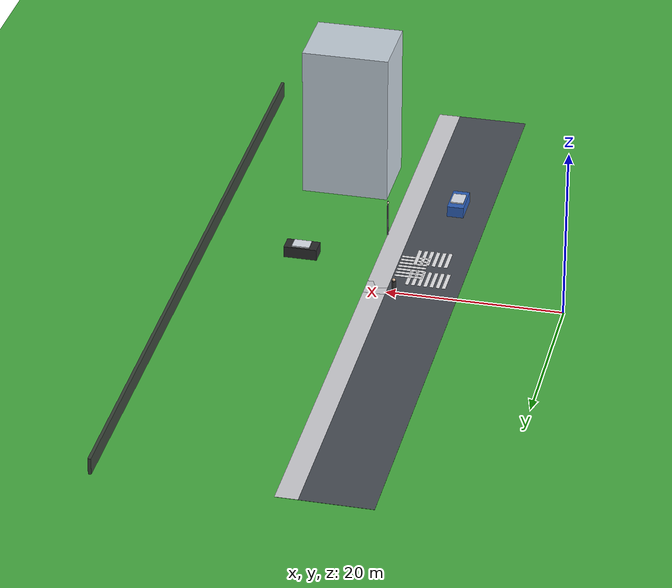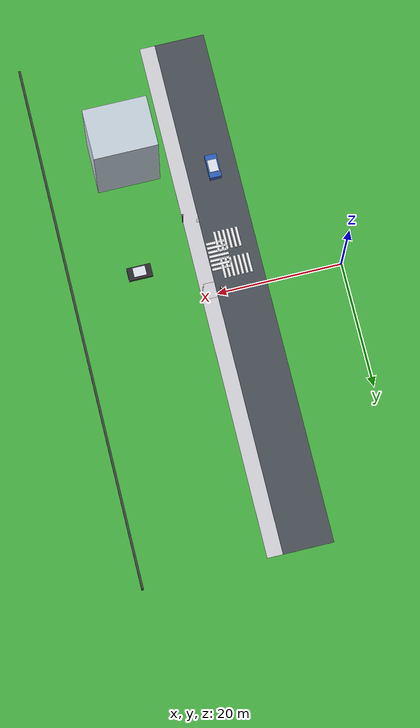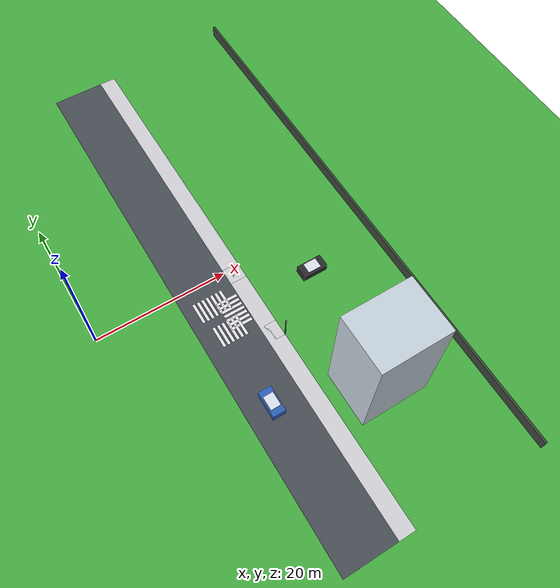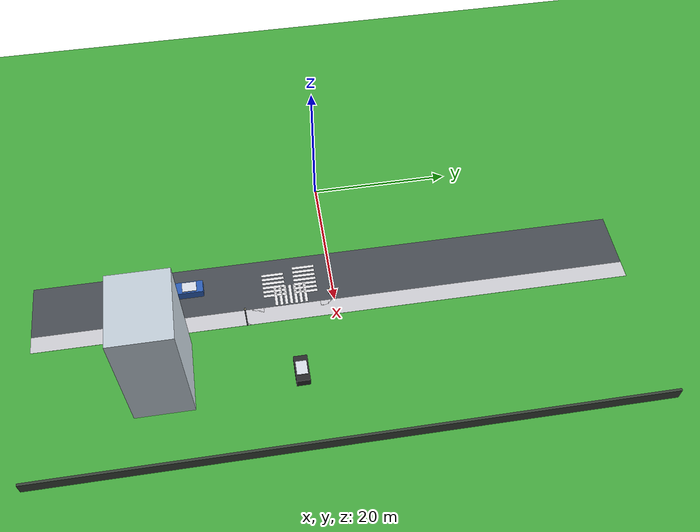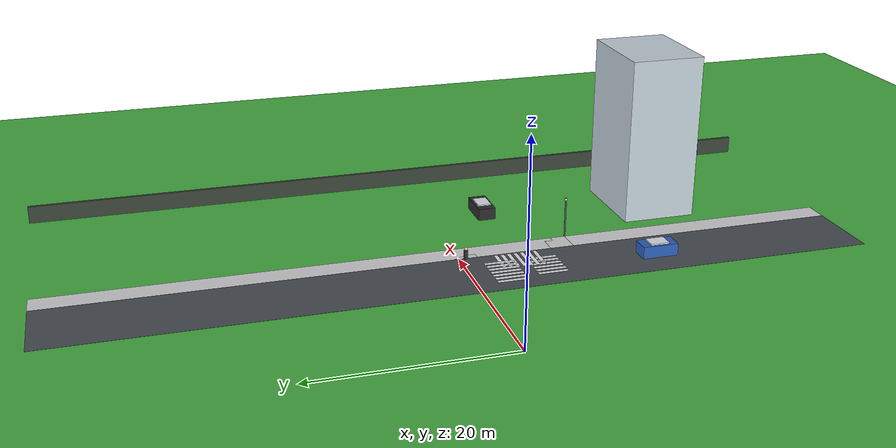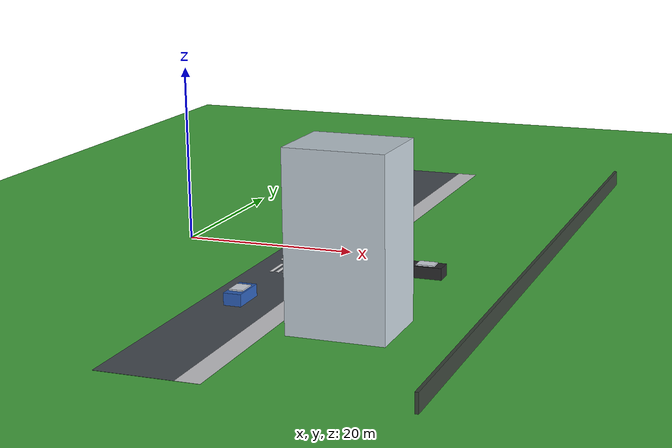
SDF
<sdf version="1.9">
 <world name="city_second">
  <model name="ground_plane">
   <static>true</static>
   <link name="link">
    <collision name="collision">
     <geometry><plane><normal>0 0 1</normal><size>300 300</size></plane></geometry>
    </collision>
    <visual name="visual">
     <geometry><plane><normal>0 0 1</normal><size>300 300</size></plane></geometry>
     <material>
      <ambient>0.28 0.69 0.26 1</ambient>
      <diffuse>0.28 0.69 0.26 1</diffuse>
      <specular>0.03 0.03 0.03 1</specular>
     </material>
    </visual>
   </link>
  </model>
  <model name="road_v_2">
   <static>true</static>
   <pose>16.0 0 0.01 0 0 0.0</pose>
   <link name="link">
    <collision name="collision"><geometry><box><size>8.0 84 0.02</size></box></geometry></collision>
    <visual name="visual">
     <geometry><box><size>8.0 84 0.02</size></box></geometry>
     <material>
      <ambient>0.29 0.31 0.34 1</ambient>
      <diffuse>0.29 0.31 0.34 1</diffuse>
      <specular>0.03 0.03 0.03 1</specular>
     </material>
    </visual>
   </link>
  </model>
  <model name="sidewalk_v_2_east">
   <static>true</static>
   <pose>21.25 0 0.015 0 0 0.0</pose>
   <link name="link">
    <collision name="collision"><geometry><box><size>2.5 84 0.02</size></box></geometry></collision>
    <visual name="visual">
     <geometry><box><size>2.5 84 0.02</size></box></geometry>
     <material>
      <ambient>0.83 0.83 0.85 1</ambient>
      <diffuse>0.83 0.83 0.85 1</diffuse>
      <specular>0.03 0.03 0.03 1</specular>
     </material>
    </visual>
   </link>
  </model>
  <model name="corner_sidewalk_2_1_3">
   <static>true</static>
   <pose>21.25 -11.25 0.015 0 0 0.0</pose>
   <link name="link">
    <collision name="collision"><geometry><box><size>2.5 2.5 0.02</size></box></geometry></collision>
    <visual name="visual">
     <geometry><box><size>2.5 2.5 0.02</size></box></geometry>
     <material>
      <ambient>0.83 0.83 0.85 1</ambient>
      <diffuse>0.83 0.83 0.85 1</diffuse>
      <specular>0.03 0.03 0.03 1</specular>
     </material>
    </visual>
   </link>
  </model>
  <model name="corner_sidewalk_2_1_4">
   <static>true</static>
   <pose>21.25 -0.75 0.015 0 0 0.0</pose>
   <link name="link">
    <collision name="collision"><geometry><box><size>2.5 2.5 0.02</size></box></geometry></collision>
    <visual name="visual">
     <geometry><box><size>2.5 2.5 0.02</size></box></geometry>
     <material>
      <ambient>0.83 0.83 0.85 1</ambient>
      <diffuse>0.83 0.83 0.85 1</diffuse>
      <specular>0.03 0.03 0.03 1</specular>
     </material>
    </visual>
   </link>
  </model>
  <model name="crosswalk_h_2_1_south_2">
   <static>true</static>
   <pose>14.6 -8.25 0.017 0 0 0.0</pose>
   <link name="link">
    <collision name="collision"><geometry><box><size>0.42 3.2 0.01</size></box></geometry></collision>
    <visual name="visual">
     <geometry><box><size>0.42 3.2 0.01</size></box></geometry>
     <material>
      <ambient>0.92 0.92 0.93 1</ambient>
      <diffuse>0.92 0.92 0.93 1</diffuse>
      <specular>0.03 0.03 0.03 1</specular>
     </material>
    </visual>
   </link>
  </model>
  <model name="crosswalk_h_2_1_south_3">
   <static>true</static>
   <pose>15.3 -8.25 0.017 0 0 0.0</pose>
   <link name="link">
    <collision name="collision"><geometry><box><size>0.42 3.2 0.01</size></box></geometry></collision>
    <visual name="visual">
     <geometry><box><size>0.42 3.2 0.01</size></box></geometry>
     <material>
      <ambient>0.92 0.92 0.93 1</ambient>
      <diffuse>0.92 0.92 0.93 1</diffuse>
      <specular>0.03 0.03 0.03 1</specular>
     </material>
    </visual>
   </link>
  </model>
  <model name="crosswalk_h_2_1_south_4">
   <static>true</static>
   <pose>16.0 -8.25 0.017 0 0 0.0</pose>
   <link name="link">
    <collision name="collision"><geometry><box><size>0.42 3.2 0.01</size></box></geometry></collision>
    <visual name="visual">
     <geometry><box><size>0.42 3.2 0.01</size></box></geometry>
     <material>
      <ambient>0.92 0.92 0.93 1</ambient>
      <diffuse>0.92 0.92 0.93 1</diffuse>
      <specular>0.03 0.03 0.03 1</specular>
     </material>
    </visual>
   </link>
  </model>
  <model name="crosswalk_h_2_1_south_5">
   <static>true</static>
   <pose>16.7 -8.25 0.017 0 0 0.0</pose>
   <link name="link">
    <collision name="collision"><geometry><box><size>0.42 3.2 0.01</size></box></geometry></collision>
    <visual name="visual">
     <geometry><box><size>0.42 3.2 0.01</size></box></geometry>
     <material>
      <ambient>0.92 0.92 0.93 1</ambient>
      <diffuse>0.92 0.92 0.93 1</diffuse>
      <specular>0.03 0.03 0.03 1</specular>
     </material>
    </visual>
   </link>
  </model>
  <model name="crosswalk_h_2_1_south_6">
   <static>true</static>
   <pose>17.4 -8.25 0.017 0 0 0.0</pose>
   <link name="link">
    <collision name="collision"><geometry><box><size>0.42 3.2 0.01</size></box></geometry></collision>
    <visual name="visual">
     <geometry><box><size>0.42 3.2 0.01</size></box></geometry>
     <material>
      <ambient>0.92 0.92 0.93 1</ambient>
      <diffuse>0.92 0.92 0.93 1</diffuse>
      <specular>0.03 0.03 0.03 1</specular>
     </material>
    </visual>
   </link>
  </model>
  <model name="crosswalk_h_2_1_south_7">
   <static>true</static>
   <pose>18.1 -8.25 0.017 0 0 0.0</pose>
   <link name="link">
    <collision name="collision"><geometry><box><size>0.42 3.2 0.01</size></box></geometry></collision>
    <visual name="visual">
     <geometry><box><size>0.42 3.2 0.01</size></box></geometry>
     <material>
      <ambient>0.92 0.92 0.93 1</ambient>
      <diffuse>0.92 0.92 0.93 1</diffuse>
      <specular>0.03 0.03 0.03 1</specular>
     </material>
    </visual>
   </link>
  </model>
  <model name="crosswalk_h_2_1_north_1">
   <static>true</static>
   <pose>13.9 -3.75 0.017 0 0 0.0</pose>
   <link name="link">
    <collision name="collision"><geometry><box><size>0.42 3.2 0.01</size></box></geometry></collision>
    <visual name="visual">
     <geometry><box><size>0.42 3.2 0.01</size></box></geometry>
     <material>
      <ambient>0.92 0.92 0.93 1</ambient>
      <diffuse>0.92 0.92 0.93 1</diffuse>
      <specular>0.03 0.03 0.03 1</specular>
     </material>
    </visual>
   </link>
  </model>
  <model name="crosswalk_h_2_1_north_2">
   <static>true</static>
   <pose>14.6 -3.75 0.017 0 0 0.0</pose>
   <link name="link">
    <collision name="collision"><geometry><box><size>0.42 3.2 0.01</size></box></geometry></collision>
    <visual name="visual">
     <geometry><box><size>0.42 3.2 0.01</size></box></geometry>
     <material>
      <ambient>0.92 0.92 0.93 1</ambient>
      <diffuse>0.92 0.92 0.93 1</diffuse>
      <specular>0.03 0.03 0.03 1</specular>
     </material>
    </visual>
   </link>
  </model>
  <model name="crosswalk_h_2_1_north_3">
   <static>true</static>
   <pose>15.3 -3.75 0.017 0 0 0.0</pose>
   <link name="link">
    <collision name="collision"><geometry><box><size>0.42 3.2 0.01</size></box></geometry></collision>
    <visual name="visual">
     <geometry><box><size>0.42 3.2 0.01</size></box></geometry>
     <material>
      <ambient>0.92 0.92 0.93 1</ambient>
      <diffuse>0.92 0.92 0.93 1</diffuse>
      <specular>0.03 0.03 0.03 1</specular>
     </material>
    </visual>
   </link>
  </model>
  <model name="crosswalk_h_2_1_north_4">
   <static>true</static>
   <pose>16.0 -3.75 0.017 0 0 0.0</pose>
   <link name="link">
    <collision name="collision"><geometry><box><size>0.42 3.2 0.01</size></box></geometry></collision>
    <visual name="visual">
     <geometry><box><size>0.42 3.2 0.01</size></box></geometry>
     <material>
      <ambient>0.92 0.92 0.93 1</ambient>
      <diffuse>0.92 0.92 0.93 1</diffuse>
      <specular>0.03 0.03 0.03 1</specular>
     </material>
    </visual>
   </link>
  </model>
  <model name="crosswalk_h_2_1_north_5">
   <static>true</static>
   <pose>16.7 -3.75 0.017 0 0 0.0</pose>
   <link name="link">
    <collision name="collision"><geometry><box><size>0.42 3.2 0.01</size></box></geometry></collision>
    <visual name="visual">
     <geometry><box><size>0.42 3.2 0.01</size></box></geometry>
     <material>
      <ambient>0.92 0.92 0.93 1</ambient>
      <diffuse>0.92 0.92 0.93 1</diffuse>
      <specular>0.03 0.03 0.03 1</specular>
     </material>
    </visual>
   </link>
  </model>
  <model name="crosswalk_h_2_1_north_6">
   <static>true</static>
   <pose>17.4 -3.75 0.017 0 0 0.0</pose>
   <link name="link">
    <collision name="collision"><geometry><box><size>0.42 3.2 0.01</size></box></geometry></collision>
    <visual name="visual">
     <geometry><box><size>0.42 3.2 0.01</size></box></geometry>
     <material>
      <ambient>0.92 0.92 0.93 1</ambient>
      <diffuse>0.92 0.92 0.93 1</diffuse>
      <specular>0.03 0.03 0.03 1</specular>
     </material>
    </visual>
   </link>
  </model>
  <model name="crosswalk_h_2_1_north_7">
   <static>true</static>
   <pose>18.1 -3.75 0.017 0 0 0.0</pose>
   <link name="link">
    <collision name="collision"><geometry><box><size>0.42 3.2 0.01</size></box></geometry></collision>
    <visual name="visual">
     <geometry><box><size>0.42 3.2 0.01</size></box></geometry>
     <material>
      <ambient>0.92 0.92 0.93 1</ambient>
      <diffuse>0.92 0.92 0.93 1</diffuse>
      <specular>0.03 0.03 0.03 1</specular>
     </material>
    </visual>
   </link>
  </model>
  <model name="crosswalk_v_2_1_east_1">
   <static>true</static>
   <pose>18.25 -8.1 0.017 0 0 0.0</pose>
   <link name="link">
    <collision name="collision"><geometry><box><size>3.2 0.42 0.01</size></box></geometry></collision>
    <visual name="visual">
     <geometry><box><size>3.2 0.42 0.01</size></box></geometry>
     <material>
      <ambient>0.92 0.92 0.93 1</ambient>
      <diffuse>0.92 0.92 0.93 1</diffuse>
      <specular>0.03 0.03 0.03 1</specular>
     </material>
    </visual>
   </link>
  </model>
  <model name="crosswalk_v_2_1_east_2">
   <static>true</static>
   <pose>18.25 -7.3999999999999995 0.017 0 0 0.0</pose>
   <link name="link">
    <collision name="collision"><geometry><box><size>3.2 0.42 0.01</size></box></geometry></collision>
    <visual name="visual">
     <geometry><box><size>3.2 0.42 0.01</size></box></geometry>
     <material>
      <ambient>0.92 0.92 0.93 1</ambient>
      <diffuse>0.92 0.92 0.93 1</diffuse>
      <specular>0.03 0.03 0.03 1</specular>
     </material>
    </visual>
   </link>
  </model>
  <model name="crosswalk_v_2_1_east_3">
   <static>true</static>
   <pose>18.25 -6.699999999999999 0.017 0 0 0.0</pose>
   <link name="link">
    <collision name="collision"><geometry><box><size>3.2 0.42 0.01</size></box></geometry></collision>
    <visual name="visual">
     <geometry><box><size>3.2 0.42 0.01</size></box></geometry>
     <material>
      <ambient>0.92 0.92 0.93 1</ambient>
      <diffuse>0.92 0.92 0.93 1</diffuse>
      <specular>0.03 0.03 0.03 1</specular>
     </material>
    </visual>
   </link>
  </model>
  <model name="crosswalk_v_2_1_east_4">
   <static>true</static>
   <pose>18.25 -6.0 0.017 0 0 0.0</pose>
   <link name="link">
    <collision name="collision"><geometry><box><size>3.2 0.42 0.01</size></box></geometry></collision>
    <visual name="visual">
     <geometry><box><size>3.2 0.42 0.01</size></box></geometry>
     <material>
      <ambient>0.92 0.92 0.93 1</ambient>
      <diffuse>0.92 0.92 0.93 1</diffuse>
      <specular>0.03 0.03 0.03 1</specular>
     </material>
    </visual>
   </link>
  </model>
  <model name="crosswalk_v_2_1_east_5">
   <static>true</static>
   <pose>18.25 -5.3 0.017 0 0 0.0</pose>
   <link name="link">
    <collision name="collision"><geometry><box><size>3.2 0.42 0.01</size></box></geometry></collision>
    <visual name="visual">
     <geometry><box><size>3.2 0.42 0.01</size></box></geometry>
     <material>
      <ambient>0.92 0.92 0.93 1</ambient>
      <diffuse>0.92 0.92 0.93 1</diffuse>
      <specular>0.03 0.03 0.03 1</specular>
     </material>
    </visual>
   </link>
  </model>
  <model name="crosswalk_v_2_1_east_6">
   <static>true</static>
   <pose>18.25 -4.6 0.017 0 0 0.0</pose>
   <link name="link">
    <collision name="collision"><geometry><box><size>3.2 0.42 0.01</size></box></geometry></collision>
    <visual name="visual">
     <geometry><box><size>3.2 0.42 0.01</size></box></geometry>
     <material>
      <ambient>0.92 0.92 0.93 1</ambient>
      <diffuse>0.92 0.92 0.93 1</diffuse>
      <specular>0.03 0.03 0.03 1</specular>
     </material>
    </visual>
   </link>
  </model>
  <model name="crosswalk_v_2_1_east_7">
   <static>true</static>
   <pose>18.25 -3.9000000000000004 0.017 0 0 0.0</pose>
   <link name="link">
    <collision name="collision"><geometry><box><size>3.2 0.42 0.01</size></box></geometry></collision>
    <visual name="visual">
     <geometry><box><size>3.2 0.42 0.01</size></box></geometry>
     <material>
      <ambient>0.92 0.92 0.93 1</ambient>
      <diffuse>0.92 0.92 0.93 1</diffuse>
      <specular>0.03 0.03 0.03 1</specular>
     </material>
    </visual>
   </link>
  </model>
  <model name="house_1_3">
   <static>true</static>
   <pose>29.3 -24.3 9.0 0 0 0.0</pose>
   <link name="link">
    <collision name="collision"><geometry><box><size>10 8 18</size></box></geometry></collision>
    <visual name="visual">
     <geometry><box><size>10 8 18</size></box></geometry>
     <material>
      <ambient>0.78 0.83 0.87 1</ambient>
      <diffuse>0.78 0.83 0.87 1</diffuse>
      <specular>0.03 0.03 0.03 1</specular>
     </material>
    </visual>
   </link>
  </model>
  <model name="car_2">
   <static>true</static>
   <pose>15.8 -20.0 0.65 0 0 1.5707963267948966</pose>
   <link name="link">
    <collision name="collision"><geometry><box><size>3.8 1.9 1.3</size></box></geometry></collision>
    <visual name="body">
     <geometry><box><size>3.8 1.9 1.3</size></box></geometry>
     <material>
      <ambient>0.18 0.38 0.74 1</ambient>
      <diffuse>0.18 0.38 0.74 1</diffuse>
      <specular>0.03 0.03 0.03 1</specular>
     </material>
    </visual>
    <visual name="roof">
     <pose>0 0 0.55 0 0 0</pose>
     <geometry><box><size>2.0 1.5 0.5</size></box></geometry>
     <material>
      <ambient>0.88 0.9 0.94 1</ambient>
      <diffuse>0.88 0.9 0.94 1</diffuse>
      <specular>0.03 0.03 0.03 1</specular>
     </material>
    </visual>
   </link>
  </model>
  <model name="car_5">
   <static>true</static>
   <pose>31.0 -6.0 0.65 0 0 0.0</pose>
   <link name="link">
    <collision name="collision"><geometry><box><size>3.8 1.9 1.3</size></box></geometry></collision>
    <visual name="body">
     <geometry><box><size>3.8 1.9 1.3</size></box></geometry>
     <material>
      <ambient>0.17 0.17 0.18 1</ambient>
      <diffuse>0.17 0.17 0.18 1</diffuse>
      <specular>0.03 0.03 0.03 1</specular>
     </material>
    </visual>
    <visual name="roof">
     <pose>0 0 0.55 0 0 0</pose>
     <geometry><box><size>2.0 1.5 0.5</size></box></geometry>
     <material>
      <ambient>0.88 0.9 0.94 1</ambient>
      <diffuse>0.88 0.9 0.94 1</diffuse>
      <specular>0.03 0.03 0.03 1</specular>
     </material>
    </visual>
   </link>
  </model>
  <model name="person_6">
   <static>true</static>
   <pose>19.2 -0.5 0 0 0 1.096</pose>
   <link name="link">
    <collision name="legs">
     <pose>0 0 0.45 0 0 0</pose>
     <geometry><cylinder><radius>0.18</radius><length>0.9</length></cylinder></geometry>
    </collision>
    <visual name="torso">
     <pose>0 0 0.85 0 0 0</pose>
     <geometry><cylinder><radius>0.22</radius><length>0.9</length></cylinder></geometry>
     <material>
      <ambient>0.18 0.18 0.18 1</ambient>
      <diffuse>0.18 0.18 0.18 1</diffuse>
      <specular>0.03 0.03 0.03 1</specular>
     </material>
    </visual>
    <visual name="head">
     <pose>0 0 1.45 0 0 0</pose>
     <geometry><sphere><radius>0.18</radius></sphere></geometry>
     <material>
      <ambient>0.92 0.78 0.66 1</ambient>
      <diffuse>0.92 0.78 0.66 1</diffuse>
      <specular>0.03 0.03 0.03 1</specular>
     </material>
    </visual>
   </link>
  </model>
  <model name="lamp_7">
   <static>true</static>
   <pose>22.5 -12.5 2.2 0 0 0</pose>
   <link name="link">
    <collision name="collision">
     <geometry><cylinder><radius>0.08</radius><length>4.4</length></cylinder></geometry>
    </collision>
    <visual name="pole">
     <geometry><cylinder><radius>0.08</radius><length>4.4</length></cylinder></geometry>
     <material>
      <ambient>0.35 0.36 0.38 1</ambient>
      <diffuse>0.35 0.36 0.38 1</diffuse>
      <specular>0.03 0.03 0.03 1</specular>
     </material>
    </visual>
    <visual name="lamp_head">
     <pose>0 0 2.0 0 0 0</pose>
     <geometry><sphere><radius>0.14</radius></sphere></geometry>
     <material>
      <ambient>0.96 0.94 0.78 1</ambient>
      <diffuse>0.96 0.94 0.78 1</diffuse>
      <specular>0.03 0.03 0.03 1</specular>
     </material>
    </visual>
   </link>
  </model>
  <model name="fence_east">
   <static>true</static>
   <pose>42.0 0 0.95 0 0 0.0</pose>
   <link name="link">
    <collision name="collision"><geometry><box><size>0.35 84.5 1.9</size></box></geometry></collision>
    <visual name="visual">
     <geometry><box><size>0.35 84.5 1.9</size></box></geometry>
     <material>
      <ambient>0.23 0.27 0.23 1</ambient>
      <diffuse>0.23 0.27 0.23 1</diffuse>
      <specular>0.03 0.03 0.03 1</specular>
     </material>
    </visual>
   </link>
  </model>
 </world>
</sdf>
